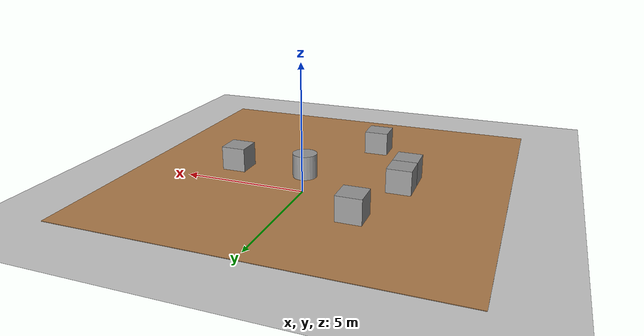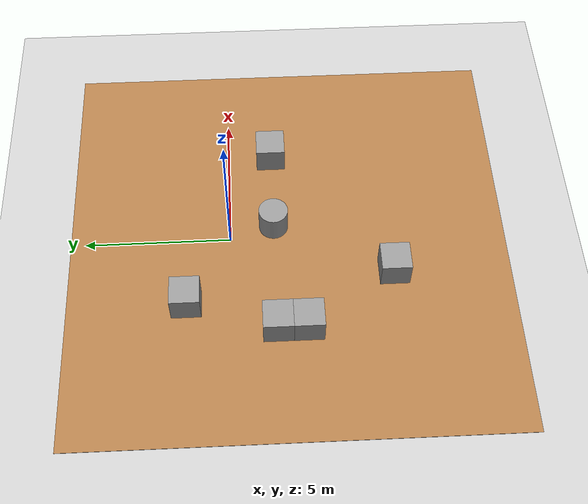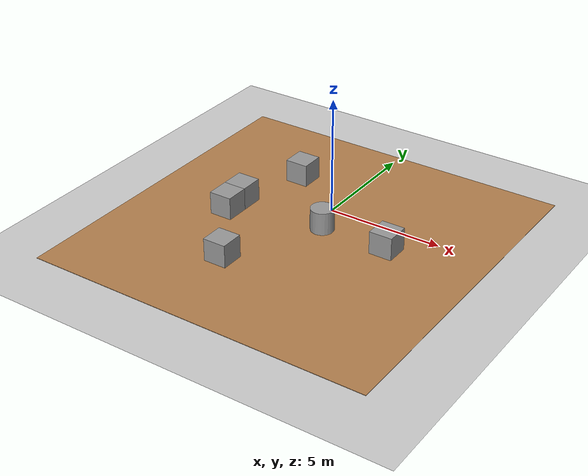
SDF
<sdf version="1.6">
 <world name="default">
  <model name="ground_plane">
   <static>1</static>
   <link name="link">
    <collision name="collision">
     <laser_retro>255</laser_retro>
     <geometry><plane><normal>0 0 1</normal><size>100 100</size></plane></geometry>
     <surface><friction><ode><mu>100</mu><mu2>50</mu2></ode></friction></surface>
    </collision>
    <visual name="visual">
     <cast_shadows>0</cast_shadows>
     <geometry><plane><normal>0 0 1</normal><size>100 100</size></plane></geometry>
     <material>
      <script><uri>file://media/materials/scripts/gazebo.material</uri><name>Gazebo/Grey</name></script>
     </material>
    </visual>
    <velocity_decay><linear>0</linear><angular>0</angular></velocity_decay>
   </link>
  </model>
  <physics name="default_physics" default="0" type="ode">
   <max_step_size>0.001</max_step_size>
   <real_time_factor>1</real_time_factor>
   <real_time_update_rate>1000</real_time_update_rate>
  </physics>
  <scene><ambient>0.4 0.4 0.4 1</ambient><background>0.7 0.7 0.7 1</background><shadows>1</shadows></scene>
  <gravity>0 0 -9.8</gravity>
  <magnetic_field>6e-06 2.3e-05 -4.2e-05</magnetic_field>
  <atmosphere type="adiabatic"/>
  <audio><device>default</device></audio>
  <spherical_coordinates>
   <surface_model>EARTH_WGS84</surface_model>
   <latitude_deg>0</latitude_deg>
   <longitude_deg>0</longitude_deg>
   <elevation>0</elevation>
   <heading_deg>0</heading_deg>
  </spherical_coordinates>
  <model name="unit_cylinder">
   <pose>0.499996 -1.5 0.499993 -4e-06 -1e-06 0</pose>
   <link name="link">
    <inertial>
     <mass>1</mass>
     <inertia><ixx>0.145833</ixx><ixy>0</ixy><ixz>0</ixz><iyy>0.145833</iyy><iyz>0</iyz><izz>0.125</izz></inertia>
    </inertial>
    <collision name="collision">
     <geometry><cylinder><radius>0.5</radius><length>1</length></cylinder></geometry>
    </collision>
    <visual name="visual">
     <geometry><cylinder><radius>0.5</radius><length>1</length></cylinder></geometry>
     <material>
      <script><name>Gazebo/Grey</name><uri>file://media/materials/scripts/gazebo.material</uri></script>
     </material>
    </visual>
   </link>
  </model>
  <model name="unit_box_clone">
   <pose>-1.5 -5.5 0.499995 0 1e-05 3e-06</pose>
   <link name="link">
    <inertial>
     <mass>1</mass>
     <inertia>
      <ixx>0.166667</ixx>
      <ixy>0</ixy>
      <ixz>0</ixz>
      <iyy>0.166667</iyy>
      <iyz>0</iyz>
      <izz>0.166667</izz>
     </inertia>
    </inertial>
    <collision name="collision"><geometry><box><size>1 1 1</size></box></geometry></collision>
    <visual name="visual">
     <geometry><box><size>1 1 1</size></box></geometry>
     <material>
      <script><name>Gazebo/Grey</name><uri>file://media/materials/scripts/gazebo.material</uri></script>
     </material>
    </visual>
   </link>
  </model>
  <model name="unit_box_1">
   <pose>-3.5 -2.5 0.499995 -1e-05 -0 -2e-06</pose>
   <link name="link">
    <inertial>
     <mass>1</mass>
     <inertia>
      <ixx>0.166667</ixx>
      <ixy>0</ixy>
      <ixz>0</ixz>
      <iyy>0.166667</iyy>
      <iyz>0</iyz>
      <izz>0.166667</izz>
     </inertia>
    </inertial>
    <collision name="collision"><geometry><box><size>1 1 1</size></box></geometry></collision>
    <visual name="visual">
     <geometry><box><size>1 1 1</size></box></geometry>
     <material>
      <script><name>Gazebo/Grey</name><uri>file://media/materials/scripts/gazebo.material</uri></script>
     </material>
    </visual>
   </link>
  </model>
  <model name="unit_box_clone_0">
   <pose>-3.5 -1.49998 0.499995 -1e-05 0 -4e-06</pose>
   <link name="link">
    <inertial>
     <mass>1</mass>
     <inertia>
      <ixx>0.166667</ixx>
      <ixy>0</ixy>
      <ixz>0</ixz>
      <iyy>0.166667</iyy>
      <iyz>0</iyz>
      <izz>0.166667</izz>
     </inertia>
    </inertial>
    <collision name="collision"><geometry><box><size>1 1 1</size></box></geometry></collision>
    <visual name="visual">
     <geometry><box><size>1 1 1</size></box></geometry>
     <material>
      <script><name>Gazebo/Grey</name><uri>file://media/materials/scripts/gazebo.material</uri></script>
     </material>
    </visual>
   </link>
  </model>
  <model name="unit_box_0_clone">
   <pose>3.5 -1.49999 0.499995 -1e-05 0 0</pose>
   <link name="link">
    <inertial>
     <mass>1</mass>
     <inertia>
      <ixx>0.166667</ixx>
      <ixy>0</ixy>
      <ixz>0</ixz>
      <iyy>0.166667</iyy>
      <iyz>0</iyz>
      <izz>0.166667</izz>
     </inertia>
    </inertial>
    <collision name="collision"><geometry><box><size>1 1 1</size></box></geometry></collision>
    <visual name="visual">
     <geometry><box><size>1 1 1</size></box></geometry>
     <material>
      <script><name>Gazebo/Grey</name><uri>file://media/materials/scripts/gazebo.material</uri></script>
     </material>
    </visual>
   </link>
  </model>
  <model name="unit_box_0_clone_0">
   <pose>-2.48759 1.5149 0.499995 -1e-05 0 0</pose>
   <link name="link">
    <inertial>
     <mass>1</mass>
     <inertia>
      <ixx>0.166667</ixx>
      <ixy>0</ixy>
      <ixz>0</ixz>
      <iyy>0.166667</iyy>
      <iyz>0</iyz>
      <izz>0.166667</izz>
     </inertia>
    </inertial>
    <collision name="collision"><geometry><box><size>1 1 1</size></box></geometry></collision>
    <visual name="visual">
     <geometry><box><size>1 1 1</size></box></geometry>
     <material>
      <script><name>Gazebo/Grey</name><uri>file://media/materials/scripts/gazebo.material</uri></script>
     </material>
    </visual>
   </link>
  </model>
  <model name="wooden_floor">
   <link name="base">
    <pose>0 0 0.00523 0 -0 0</pose>
    <inertial>
     <mass>0.2765</mass>
     <inertia>
      <ixx>0.0025148</ixx>
      <ixy>0</ixy>
      <ixz>0</ixz>
      <iyy>0.00024037</iyy>
      <iyz>0</iyz>
      <izz>0.00275013</izz>
     </inertia>
    </inertial>
    <visual name="visual">
     <geometry><box><size>15 15 0.02046</size></box></geometry>
     <material>
      <script><uri>file://media/materials/scripts/gazebo.material</uri><name>Gazebo/Wood</name></script>
      <shader type="vertex"><normal_map>__default__</normal_map></shader>
      <ambient>1 1 1 1</ambient>
      <diffuse>1 1 1 1</diffuse>
      <specular>0.2 0.2 0.2 1</specular>
      <emissive>0 0 0 1</emissive>
     </material>
    </visual>
   </link>
   <static>1</static>
   <pose>0 -2 -0.001007 0 -0 0</pose>
  </model>
  <light name="user_directional_light_0" type="directional">
   <pose>-0.505351 -5.5014 1 0 -0 0</pose>
   <diffuse>0.5 0.5 0.5 1</diffuse>
   <specular>0.1 0.1 0.1 1</specular>
   <direction>0.1 0.1 -0.9</direction>
   <attenuation>
    <range>20</range>
    <constant>0.5</constant>
    <linear>0.01</linear>
    <quadratic>0.001</quadratic>
   </attenuation>
  </light>
 </world>
</sdf>
